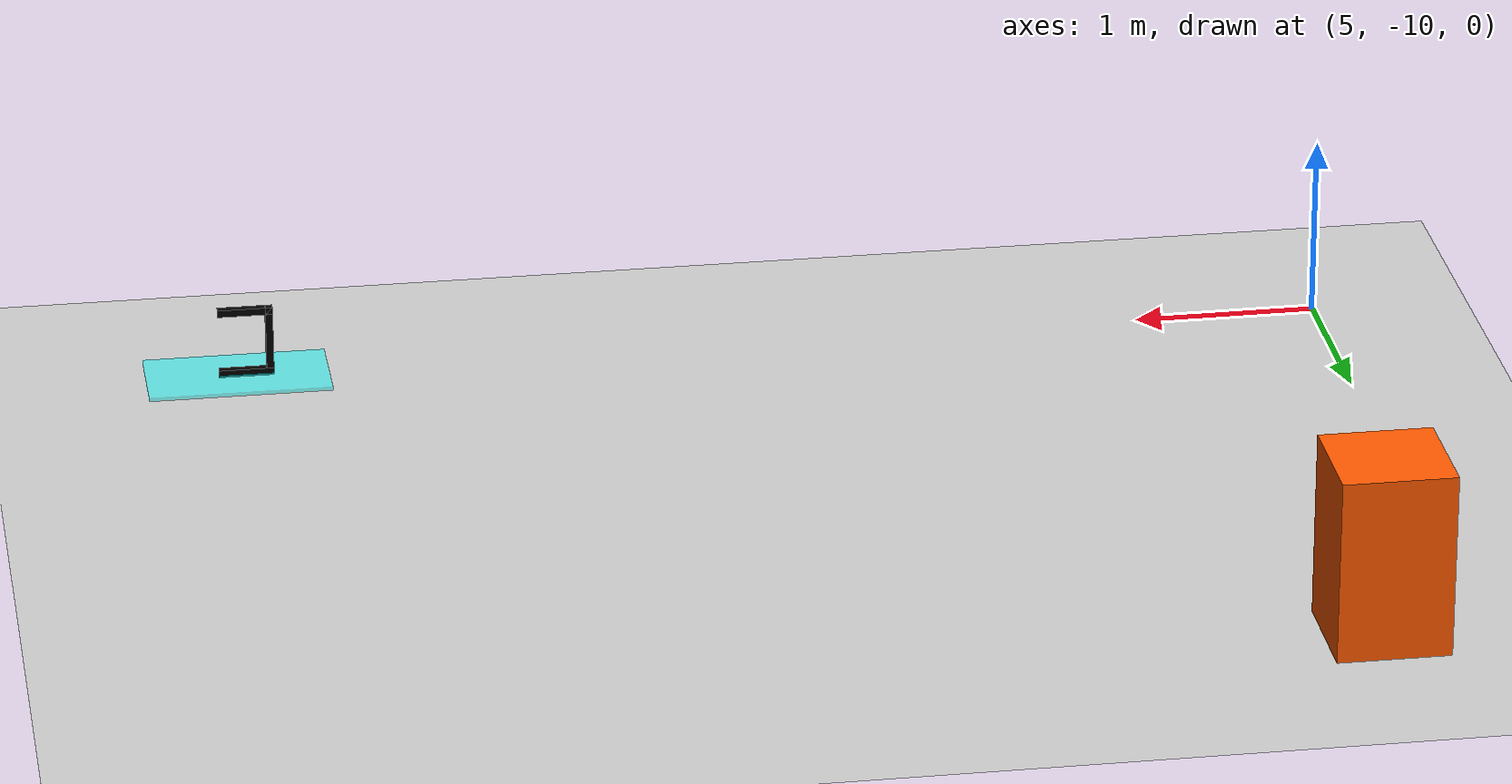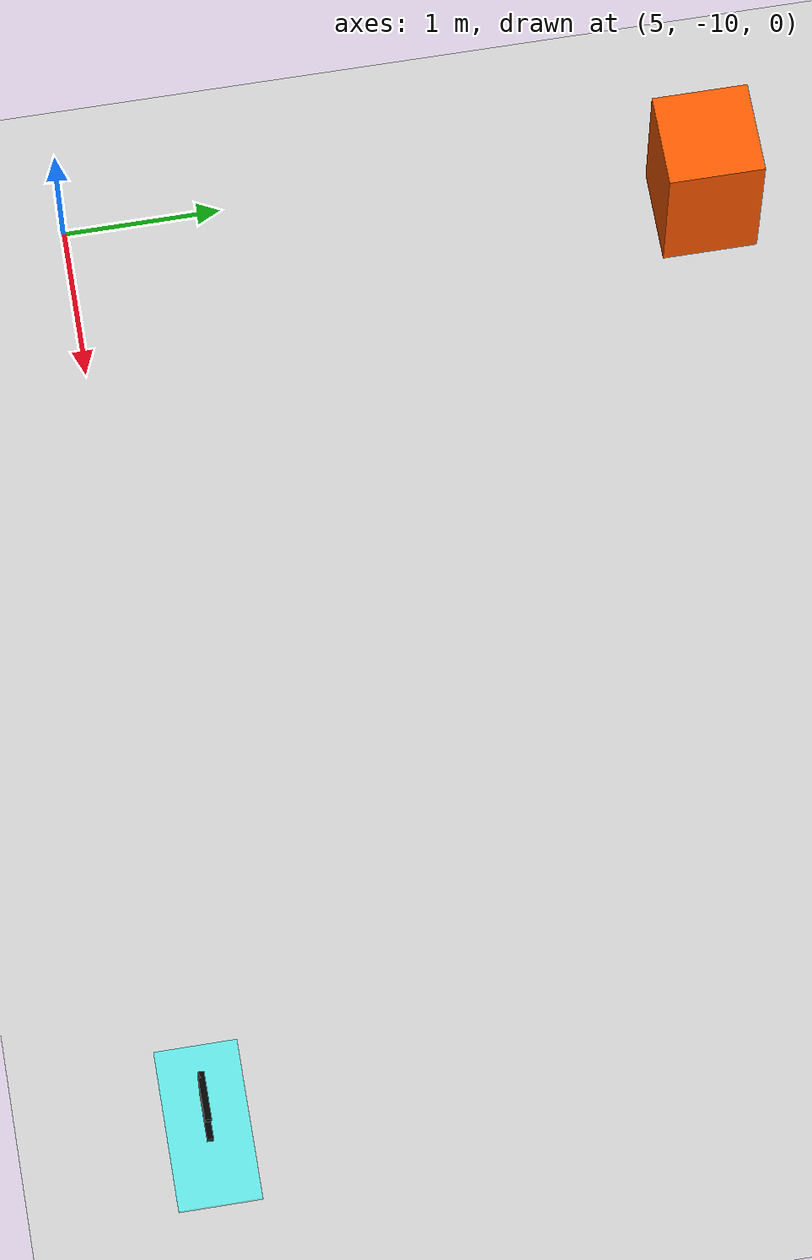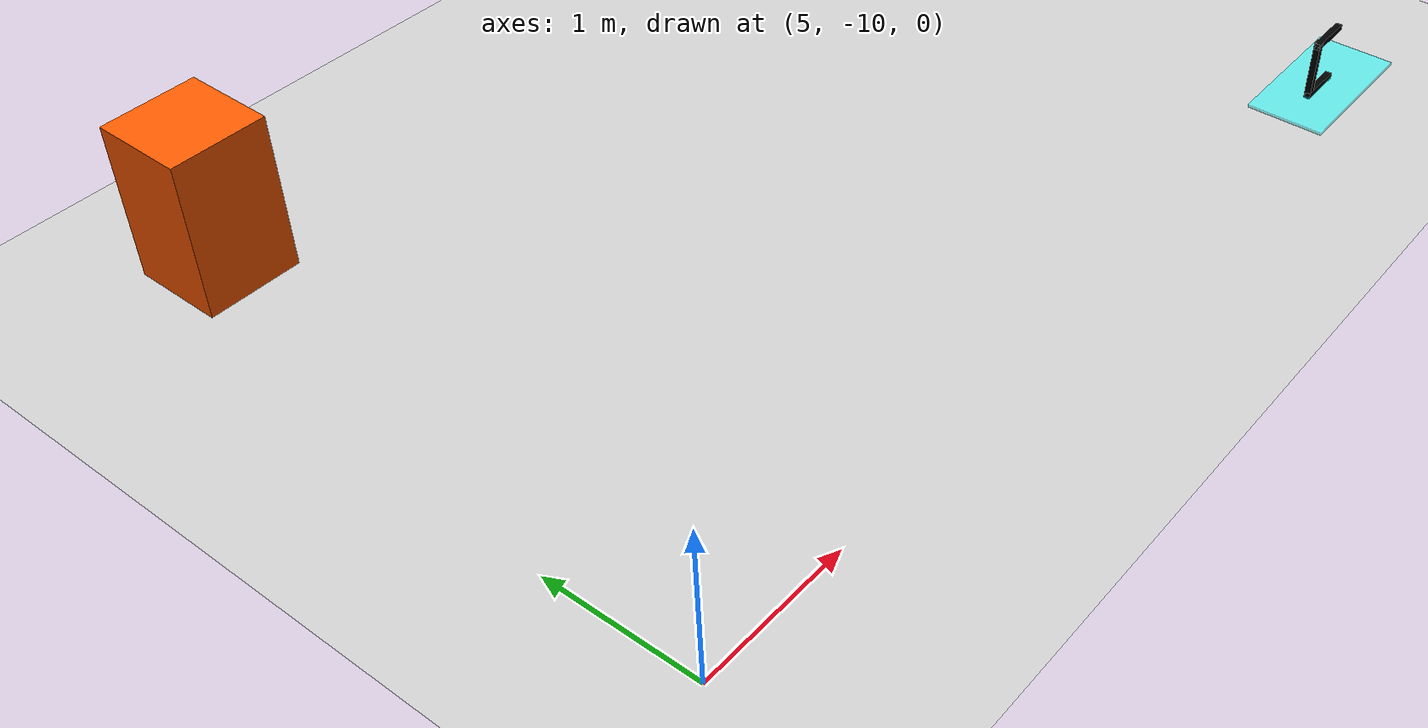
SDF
<sdf version="1.7">
 <world name="my_world">
  <model name="ground_plane">
   <static>1</static>
   <link name="link">
    <collision name="collision">
     <geometry><plane><normal>0 0 1</normal><size>100 100</size></plane></geometry>
     <surface>
      <contact><collide_bitmask>65535</collide_bitmask></contact>
      <friction><ode><mu>100</mu><mu2>50</mu2></ode></friction>
     </surface>
    </collision>
    <visual name="visual">
     <cast_shadows>0</cast_shadows>
     <geometry><plane><normal>0 0 1</normal><size>100 100</size></plane></geometry>
     <material>
      <script><uri>file://media/materials/scripts/gazebo.material</uri><name>Gazebo/Grey</name></script>
     </material>
    </visual>
   </link>
  </model>
  <model name="zone_c">
   <static>1</static>
   <pose>11 -10 0.01 0 -0 0</pose>
   <link name="base">
    <visual name="visual">
     <geometry><box><size>1 0.5 0.02</size></box></geometry>
     <material><ambient>0 1 1 0.5</ambient><diffuse>0 1 1 0.5</diffuse></material>
    </visual>
   </link>
   <link name="letter_C_1">
    <pose>-0.05 0 0.38 0 -0 0</pose>
    <visual name="v">
     <geometry><box><size>0.3 0.04 0.04</size></box></geometry>
     <material><ambient>0 0 0 1</ambient><diffuse>0 0 0 1</diffuse></material>
    </visual>
   </link>
   <link name="letter_C_2">
    <pose>-0.05 0 0.02 0 -0 0</pose>
    <visual name="v">
     <geometry><box><size>0.3 0.04 0.04</size></box></geometry>
     <material><ambient>0 0 0 1</ambient><diffuse>0 0 0 1</diffuse></material>
    </visual>
   </link>
   <link name="letter_C_3">
    <pose>-0.18 0 0.2 0 -0 0</pose>
    <visual name="v">
     <geometry><box><size>0.04 0.04 0.4</size></box></geometry>
     <material><ambient>0 0 0 1</ambient><diffuse>0 0 0 1</diffuse></material>
    </visual>
   </link>
  </model>
  <model name="moving_obstacle_2">
   <pose>5.5 -6.0 0.505 0 0 0</pose>
   <link name="link">
    <inertial>
     <mass>0.3</mass>
     <inertia><ixx>0.034</ixx><ixy>0.0</ixy><ixz>0.0</ixz><iyy>0.034</iyy><iyz>0.0</iyz><izz>0.018</izz></inertia>
    </inertial>
    <collision name="collision">
     <geometry><box><size>0.60 0.60 1.00</size></box></geometry>
     <surface>
      <friction><ode><mu>0.05</mu><mu2>0.05</mu2></ode></friction>
      <bounce><restitution_coefficient>0.0</restitution_coefficient><threshold>100000.0</threshold></bounce>
      <contact>
       <ode><kp>100000.0</kp><kd>1000.0</kd><max_vel>0.02</max_vel><min_depth>0.001</min_depth></ode>
      </contact>
     </surface>
    </collision>
    <visual name="visual">
     <geometry><box><size>0.60 0.60 1.00</size></box></geometry>
     <material><ambient>1.0 0.55 0.0 1.0</ambient><diffuse>1.0 0.35 0.0 1.0</diffuse></material>
    </visual>
   </link>
   <plugin name="moving_obstacle_2_simple_move" filename="libsimple_move_plugin.so">
    <speed>0.25</speed>
    <force>15.0</force>
    <pose_publish_rate>10.0</pose_publish_rate>
    <stop_distance>0.0</stop_distance>
    <resume_distance>0.0</resume_distance>
    <start_x>5.5</start_x>
    <start_y>-6.0</start_y>
    <end_x>8.0</end_x>
    <end_y>-6.0</end_y>
   </plugin>
  </model>
 </world>
</sdf>
